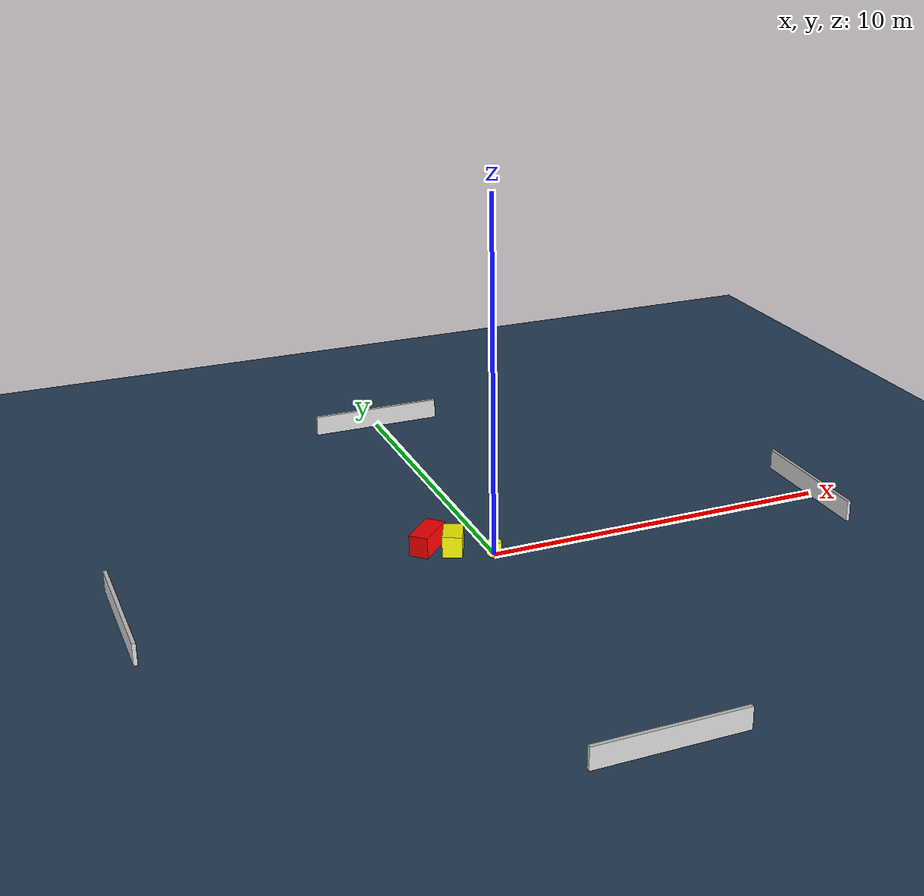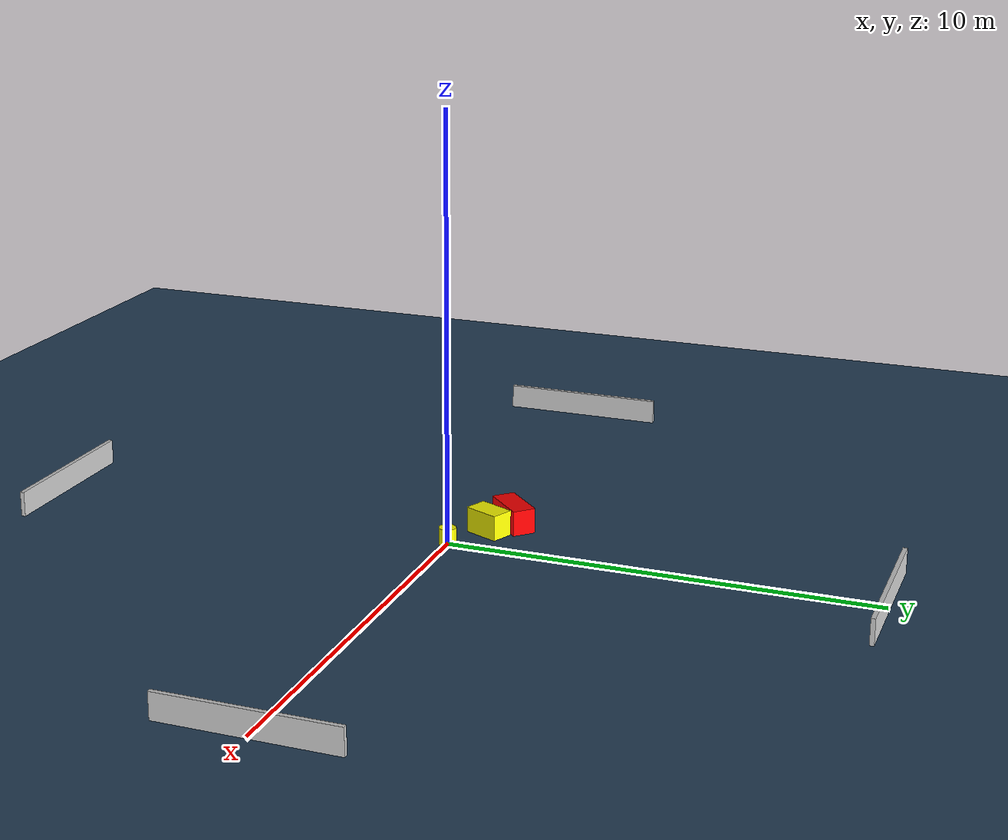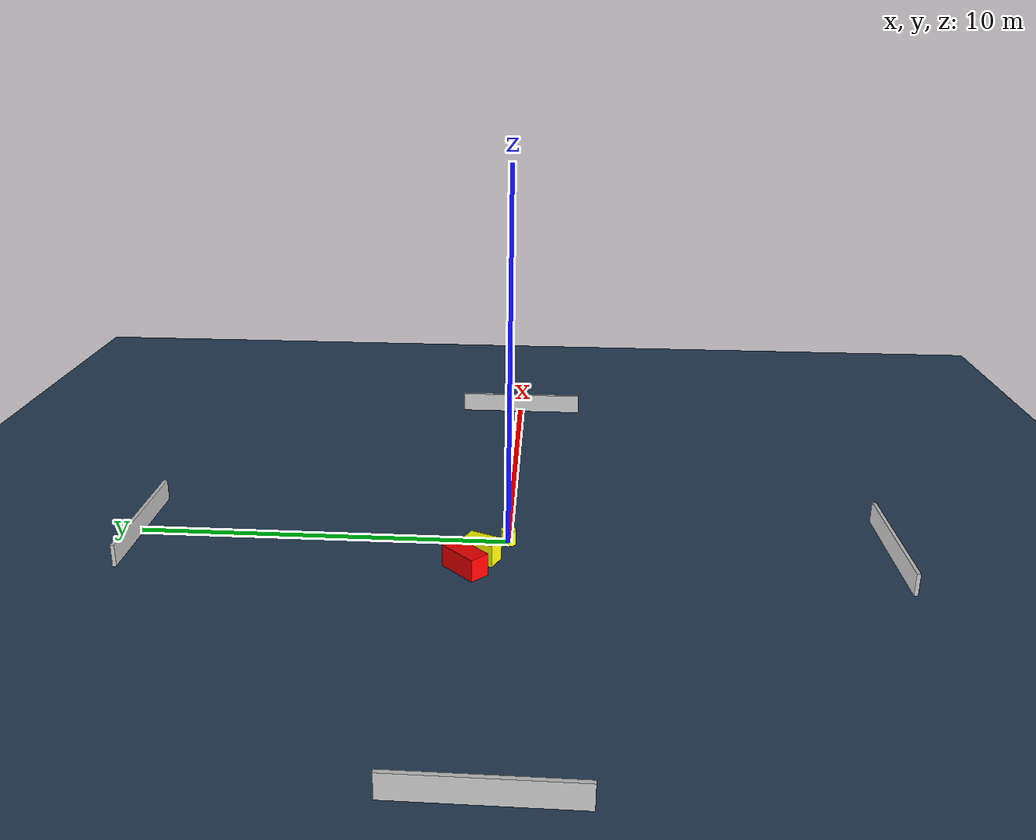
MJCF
<?xml version="1.0" ?>
<mujoco model="generated_environment">
  <option timestep="0.01" integrator="RK4" cone="elliptic"/>
  <default>
    <geom density="1"/>
  </default>
  <asset>
    <texture builtin="gradient" height="3072" name="skybox" rgb1="0.3 0.5 0.7" rgb2="0 0 0" type="skybox" width="512"/>
    <texture builtin="checker" height="300" name="groundplane" rgb1="0.2 0.3 0.4" rgb2="0.1 0.2 0.3" type="2d" width="300"/>
    <material name="groundplane" reflectance="0.2" texrepeat="5 5" texture="groundplane"/>
  </asset>
  <worldbody>
    <light dir="0 0 -1" directional="true" pos="0 0 1.5"/>
    <geom condim="3" friction="0.5 0.005 0.001" material="groundplane" name="floor" pos="0 0 0" size="0 0 0.05" type="plane"/>
    <body name="walls">
      <geom name="wall_1" condim="4" pos="-10.0 0.0 0.3" rgba="0.800000011920929 0.800000011920929 0.800000011920929 1.0" size="0.05 2.0 0.3" type="box"/>
      <geom name="wall_2" condim="4" pos="10.0 0.0 0.3" rgba="0.800000011920929 0.800000011920929 0.800000011920929 1.0" size="0.05 2.0 0.3" type="box"/>
      <geom name="wall_3" condim="4" pos="0.0 -10.0 0.3" rgba="0.800000011920929 0.800000011920929 0.800000011920929 1.0" size="2.0 0.05 0.3" type="box"/>
      <geom name="wall_4" condim="4" pos="0.0 10.0 0.3" rgba="0.800000011920929 0.800000011920929 0.800000011920929 1.0" size="2.0 0.05 0.3" type="box"/>
    </body>
    <body name="robot">
      <joint name="joint_x" type="slide" pos="0 0 0" axis="1 0 0"/>
      <joint name="joint_y" type="slide" pos="0 0 0" axis="0 1 0"/>
      <geom name="robot" type="cylinder" pos="0.0 0.0 0.2" size="0.2 0.2 0.0" mass="5.0" friction="1.0 0.005 0.0001" condim="4" rgba="1.0 1.0 0.0 1.0"/>
    </body>
    <body name="obstacle_1_movable">
      <geom name="obstacle_1_movable" condim="4" pos="-0.9365342389205089 0.6538518870375637 0.3" euler="0 0 66.08055899730041" friction="0.0 0.005 0.001" rgba="1.0 1.0 0.0 1.0" size="0.43792494912012925 0.27242513933209744 0.3" type="box" mass="0.1"/>
      <joint type="free"/>
    </body>
    <body name="obstacle_2_static">
      <geom name="obstacle_2_static" condim="4" pos="-1.5414779299412977 1.042436527694583 0.3" euler="0 0 315.4080451365839" friction="0.0 0.005 0.001" rgba="1.0 0.0 0.0 1.0" size="0.27601615169451865 0.5762859396145149 0.3" type="box"/>
    </body>
  </worldbody>
  <actuator>
    <motor name="actuator_x" joint="joint_x" gear="1" ctrlrange="-1 1"/>
    <motor name="actuator_y" joint="joint_y" gear="1" ctrlrange="-1 1"/>
  </actuator>
</mujoco>
